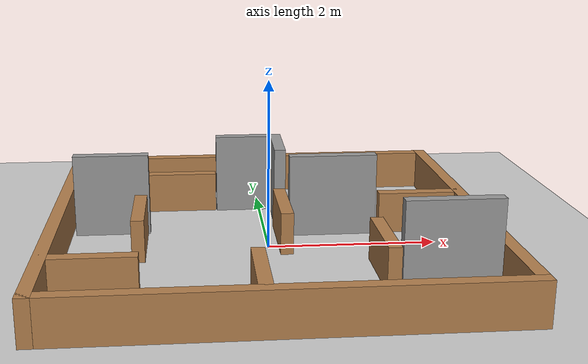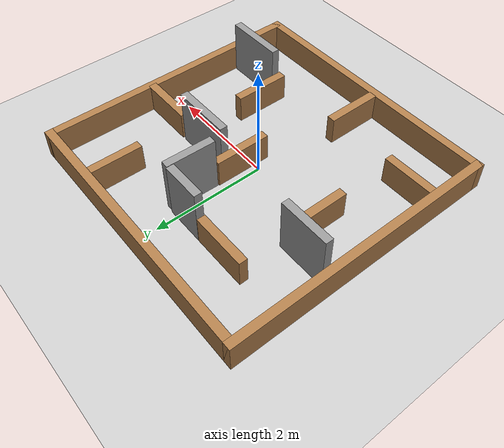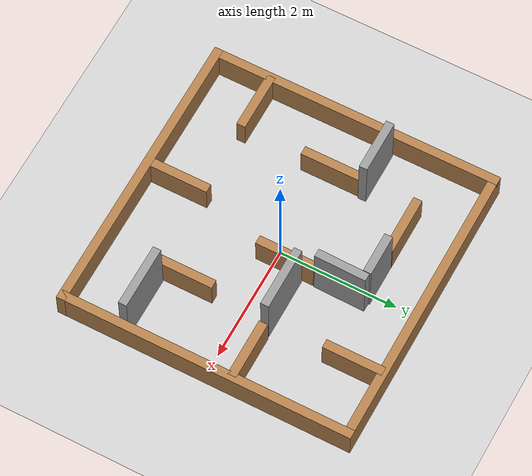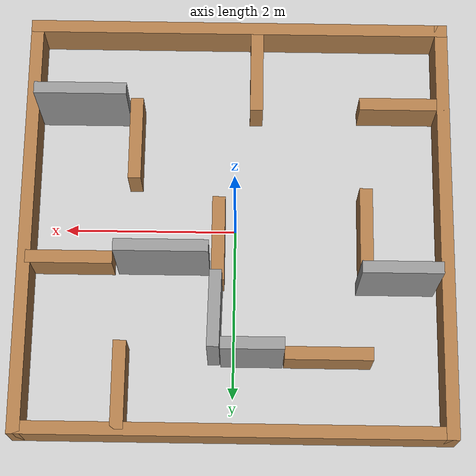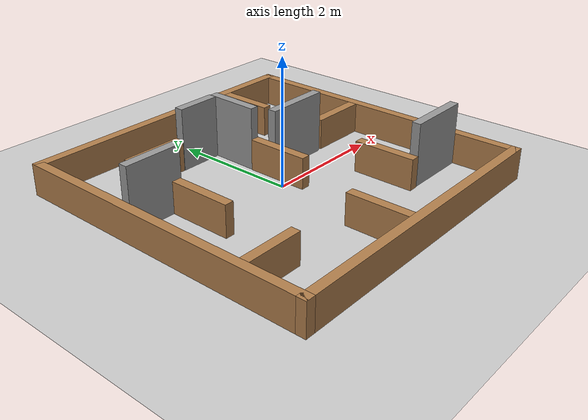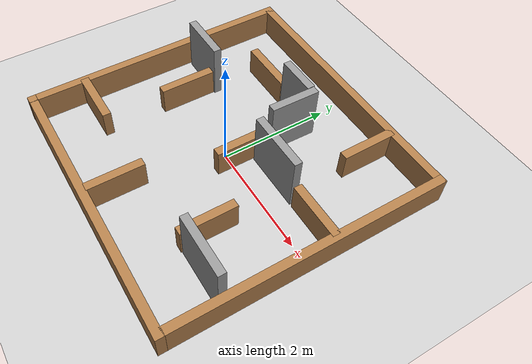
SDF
<sdf version="1.6">
 <world name="default">
  <light name="sun" type="directional">
   <pose>0 0 10 0 -0 0</pose>
   <diffuse>0.8 0.8 0.8 1</diffuse>
   <specular>0.2 0.2 0.2 1</specular>
   <attenuation>
    <range>1000</range>
    <constant>0.9</constant>
    <linear>0.01</linear>
    <quadratic>0.001</quadratic>
   </attenuation>
   <direction>-0.5 0.1 -0.9</direction>
  </light>
  <model name="ground_plane">
   <static>1</static>
   <link name="link">
    <collision name="collision">
     <geometry><plane><normal>0 0 1</normal><size>100 100</size></plane></geometry>
     <surface>
      <contact><collide_bitmask>65535</collide_bitmask></contact>
      <friction><ode><mu>100</mu><mu2>50</mu2></ode></friction>
     </surface>
    </collision>
    <visual name="visual">
     <cast_shadows>0</cast_shadows>
     <geometry><plane><normal>0 0 1</normal><size>100 100</size></plane></geometry>
     <material>
      <script><uri>file://media/materials/scripts/gazebo.material</uri><name>Gazebo/Grey</name></script>
     </material>
    </visual>
   </link>
  </model>
  <physics name="default_physics" default="0" type="ode">
   <real_time_update_rate>1000</real_time_update_rate>
   <max_step_size>0.001</max_step_size>
   <real_time_factor>1</real_time_factor>
   <ode>
    <solver>
     <type>quick</type>
     <iters>150</iters>
     <precon_iters>0</precon_iters>
     <sor>1.4</sor>
     <use_dynamic_moi_rescaling>1</use_dynamic_moi_rescaling>
    </solver>
    <constraints>
     <cfm>1e-05</cfm>
     <erp>0.2</erp>
     <contact_max_correcting_vel>2000</contact_max_correcting_vel>
     <contact_surface_layer>0.01</contact_surface_layer>
    </constraints>
   </ode>
  </physics>
  <model name="turtlebot3_plaza">
   <pose>-0.011961 -2e-06 0.006796 0 -0 0</pose>
   <link name="Wall_0">
    <collision name="Wall_0_Collision">
     <geometry><box><size>5 0.15 0.5</size></box></geometry>
     <pose>0 0 0.25 0 -0 0</pose>
    </collision>
    <visual name="Wall_0_Visual">
     <pose>0 0 0.25 0 -0 0</pose>
     <geometry><box><size>5 0.15 0.5</size></box></geometry>
     <material>
      <script><uri>file://media/materials/scripts/gazebo.material</uri><name>Gazebo/Wood</name></script>
      <ambient>1 1 1 1</ambient>
     </material>
    </visual>
    <pose>-2.425 0 0 0 -0 1.5708</pose>
   </link>
   <link name="Wall_11">
    <collision name="Wall_11_Collision">
     <geometry><box><size>1 0.15 0.5</size></box></geometry>
     <pose>0 0 0.25 0 -0 0</pose>
    </collision>
    <visual name="Wall_11_Visual">
     <pose>0 0 0.25 0 -0 0</pose>
     <geometry><box><size>1 0.15 0.5</size></box></geometry>
     <material>
      <script><uri>file://media/materials/scripts/gazebo.material</uri><name>Gazebo/Wood</name></script>
      <ambient>1 1 1 1</ambient>
     </material>
    </visual>
    <pose>-1.937 -1.467 0 0 -0 0</pose>
   </link>
   <link name="Wall_13">
    <collision name="Wall_13_Collision">
     <geometry><box><size>1 0.15 0.5</size></box></geometry>
     <pose>0 0 0.25 0 -0 0</pose>
    </collision>
    <visual name="Wall_13_Visual">
     <pose>0 0 0.25 0 -0 0</pose>
     <geometry><box><size>1 0.15 0.5</size></box></geometry>
     <material>
      <script><uri>file://media/materials/scripts/gazebo.material</uri><name>Gazebo/Wood</name></script>
      <ambient>1 1 1 1</ambient>
     </material>
    </visual>
    <pose>-0.22 -1.866 0 0 0 -1.5708</pose>
   </link>
   <link name="Wall_15">
    <collision name="Wall_15_Collision">
     <geometry><box><size>1 0.15 0.5</size></box></geometry>
     <pose>0 0 0.25 0 -0 0</pose>
    </collision>
    <visual name="Wall_15_Visual">
     <pose>0 0 0.25 0 -0 0</pose>
     <geometry><box><size>1 0.15 0.5</size></box></geometry>
     <material>
      <script><uri>file://media/materials/scripts/gazebo.material</uri><name>Gazebo/Wood</name></script>
      <ambient>1 1 1 1</ambient>
     </material>
    </visual>
    <pose>1.195 -1.002 0 0 -0 1.5708</pose>
   </link>
   <link name="Wall_17">
    <collision name="Wall_17_Collision">
     <geometry><box><size>1 0.15 0.5</size></box></geometry>
     <pose>0 0 0.25 0 -0 0</pose>
    </collision>
    <visual name="Wall_17_Visual">
     <pose>0 0 0.25 0 -0 0</pose>
     <geometry><box><size>1 0.15 0.5</size></box></geometry>
     <material>
      <script><uri>file://media/materials/scripts/gazebo.material</uri><name>Gazebo/Wood</name></script>
      <ambient>1 1 1 1</ambient>
     </material>
    </visual>
    <pose>1.288 1.93 0 0 0 -1.5708</pose>
   </link>
   <link name="Wall_19">
    <collision name="Wall_19_Collision">
     <geometry><box><size>1 0.15 0.5</size></box></geometry>
     <pose>0 0 0.25 0 -0 0</pose>
    </collision>
    <visual name="Wall_19_Visual">
     <pose>0 0 0.25 0 -0 0</pose>
     <geometry><box><size>1 0.15 0.5</size></box></geometry>
     <material>
      <script><uri>file://media/materials/scripts/gazebo.material</uri><name>Gazebo/Wood</name></script>
      <ambient>1 1 1 1</ambient>
     </material>
    </visual>
    <pose>1.91128 0.4632 0 0 -0 0</pose>
   </link>
   <link name="Wall_2">
    <collision name="Wall_2_Collision">
     <geometry><box><size>5 0.15 0.5</size></box></geometry>
     <pose>0 0 0.25 0 -0 0</pose>
    </collision>
    <visual name="Wall_2_Visual">
     <pose>0 0 0.25 0 -0 0</pose>
     <geometry><box><size>5 0.15 0.5</size></box></geometry>
     <material>
      <script><uri>file://media/materials/scripts/gazebo.material</uri><name>Gazebo/Wood</name></script>
      <ambient>1 1 1 1</ambient>
     </material>
    </visual>
    <pose>0 2.425 0 0 -0 0</pose>
   </link>
   <link name="Wall_21">
    <collision name="Wall_21_Collision">
     <geometry><box><size>1 0.15 0.5</size></box></geometry>
     <pose>0 0 0.25 0 -0 0</pose>
    </collision>
    <visual name="Wall_21_Visual">
     <pose>0 0 0.25 0 -0 0</pose>
     <geometry><box><size>1 0.15 0.5</size></box></geometry>
     <material>
      <script><uri>file://media/materials/scripts/gazebo.material</uri><name>Gazebo/Wood</name></script>
      <ambient>1 1 1 1</ambient>
     </material>
    </visual>
    <pose>0.204 0.215 0 0 0 -1.5708</pose>
   </link>
   <link name="Wall_3">
    <collision name="Wall_3_Collision">
     <geometry><box><size>5 0.15 0.5</size></box></geometry>
     <pose>0 0 0.25 0 -0 0</pose>
    </collision>
    <visual name="Wall_3_Visual">
     <pose>0 0 0.25 0 -0 0</pose>
     <geometry><box><size>5 0.15 0.5</size></box></geometry>
     <material>
      <script><uri>file://media/materials/scripts/gazebo.material</uri><name>Gazebo/Wood</name></script>
      <ambient>1 1 1 1</ambient>
     </material>
    </visual>
    <pose>2.425 0 0 0 0 -1.5708</pose>
   </link>
   <link name="Wall_4">
    <collision name="Wall_4_Collision">
     <geometry><box><size>5 0.15 0.5</size></box></geometry>
     <pose>0 0 0.25 0 -0 0</pose>
    </collision>
    <visual name="Wall_4_Visual">
     <pose>0 0 0.25 0 -0 0</pose>
     <geometry><box><size>5 0.15 0.5</size></box></geometry>
     <material>
      <script><uri>file://media/materials/scripts/gazebo.material</uri><name>Gazebo/Wood</name></script>
      <ambient>1 1 1 1</ambient>
     </material>
    </visual>
    <pose>0 -2.425 0 0 -0 3.14159</pose>
   </link>
   <link name="Wall_7">
    <collision name="Wall_7_Collision">
     <geometry><box><size>1 0.15 0.5</size></box></geometry>
     <pose>0 0 0.25 0 -0 0</pose>
    </collision>
    <visual name="Wall_7_Visual">
     <pose>0 0 0.25 0 -0 0</pose>
     <geometry><box><size>1 0.15 0.5</size></box></geometry>
     <material>
      <script><uri>file://media/materials/scripts/gazebo.material</uri><name>Gazebo/Wood</name></script>
      <ambient>1 1 1 1</ambient>
     </material>
    </visual>
    <pose>-1.064 1.548 0 0 -0 0</pose>
   </link>
   <link name="Wall_9">
    <collision name="Wall_9_Collision">
     <geometry><box><size>1 0.15 0.5</size></box></geometry>
     <pose>0 0 0.25 0 -0 0</pose>
    </collision>
    <visual name="Wall_9_Visual">
     <pose>0 0 0.25 0 -0 0</pose>
     <geometry><box><size>1 0.15 0.5</size></box></geometry>
     <material>
      <script><uri>file://media/materials/scripts/gazebo.material</uri><name>Gazebo/Wood</name></script>
      <ambient>1 1 1 1</ambient>
     </material>
    </visual>
    <pose>-1.502 0.092 0 0 0 -1.5708</pose>
   </link>
   <static>1</static>
  </model>
  <scene><ambient>0.4 0.4 0.4 1</ambient><background>0.7 0.7 0.7 1</background><shadows>1</shadows></scene>
  <gravity>0 0 -9.8</gravity>
  <magnetic_field>6e-06 2.3e-05 -4.2e-05</magnetic_field>
  <atmosphere type="adiabatic"/>
  <audio><device>default</device></audio>
  <spherical_coordinates>
   <surface_model>EARTH_WGS84</surface_model>
   <latitude_deg>0</latitude_deg>
   <longitude_deg>0</longitude_deg>
   <elevation>0</elevation>
   <heading_deg>0</heading_deg>
  </spherical_coordinates>
  <model name="unit_box_clone_clone_0_clone">
   <pose>0.213657 1.16322 0.5 0 0 -1.58979</pose>
   <link name="link">
    <inertial>
     <mass>1</mass>
     <inertia>
      <ixx>0.166667</ixx>
      <ixy>0</ixy>
      <ixz>0</ixz>
      <iyy>0.166667</iyy>
      <iyz>0</iyz>
      <izz>0.166667</izz>
     </inertia>
    </inertial>
    <collision name="collision"><geometry><box><size>0.868763 0.138395 1</size></box></geometry></collision>
    <visual name="visual">
     <geometry><box><size>0.868763 0.138395 1</size></box></geometry>
     <material>
      <script><name>Gazebo/Grey</name><uri>file://media/materials/scripts/gazebo.material</uri></script>
     </material>
    </visual>
   </link>
  </model>
  <model name="unit_box_clone">
   <pose>-0.209751 1.5505 0.499998 -1e-06 7e-06 0.001336</pose>
   <link name="link">
    <inertial>
     <mass>1</mass>
     <inertia>
      <ixx>0.166667</ixx>
      <ixy>0</ixy>
      <ixz>0</ixz>
      <iyy>0.166667</iyy>
      <iyz>0</iyz>
      <izz>0.166667</izz>
     </inertia>
    </inertial>
    <collision name="collision"><geometry><box><size>0.708257 0.138394 1</size></box></geometry></collision>
    <visual name="visual">
     <geometry><box><size>0.708257 0.138394 1</size></box></geometry>
     <material>
      <script><name>Gazebo/Grey</name><uri>file://media/materials/scripts/gazebo.material</uri></script>
     </material>
    </visual>
   </link>
  </model>
  <model name="unit_box_clone_clone_clone_0">
   <pose>-1.8678 0.673637 0.5 0 -0 3.14144</pose>
   <link name="link">
    <inertial>
     <mass>1</mass>
     <inertia>
      <ixx>0.166667</ixx>
      <ixy>0</ixy>
      <ixz>0</ixz>
      <iyy>0.166667</iyy>
      <iyz>0</iyz>
      <izz>0.166667</izz>
     </inertia>
    </inertial>
    <collision name="collision"><geometry><box><size>0.906137 0.138395 1</size></box></geometry></collision>
    <visual name="visual">
     <geometry><box><size>0.906137 0.138395 1</size></box></geometry>
     <material>
      <script><name>Gazebo/Grey</name><uri>file://media/materials/scripts/gazebo.material</uri></script>
     </material>
    </visual>
   </link>
  </model>
  <model name="unit_box_clone_clone_clone_clone">
   <pose>1.80536 -1.41494 0.5 1e-06 -0 -3.14113</pose>
   <link name="link">
    <inertial>
     <mass>1</mass>
     <inertia>
      <ixx>0.166667</ixx>
      <ixy>0</ixy>
      <ixz>0</ixz>
      <iyy>0.166667</iyy>
      <iyz>0</iyz>
      <izz>0.166667</izz>
     </inertia>
    </inertial>
    <collision name="collision"><geometry><box><size>1.06527 0.138395 1</size></box></geometry></collision>
    <visual name="visual">
     <geometry><box><size>1.06527 0.138395 1</size></box></geometry>
     <material>
      <script><name>Gazebo/Grey</name><uri>file://media/materials/scripts/gazebo.material</uri></script>
     </material>
    </visual>
   </link>
  </model>
  <model name="unit_box_clone_clone_clone_clone_clone">
   <pose>0.822213 0.457941 0.5 1e-06 -0 -3.14113</pose>
   <link name="link">
    <inertial>
     <mass>1</mass>
     <inertia>
      <ixx>0.166667</ixx>
      <ixy>0</ixy>
      <ixz>0</ixz>
      <iyy>0.166667</iyy>
      <iyz>0</iyz>
      <izz>0.166667</izz>
     </inertia>
    </inertial>
    <collision name="collision"><geometry><box><size>1.06527 0.138395 1</size></box></geometry></collision>
    <visual name="visual">
     <geometry><box><size>1.06527 0.138395 1</size></box></geometry>
     <material>
      <script><name>Gazebo/Grey</name><uri>file://media/materials/scripts/gazebo.material</uri></script>
     </material>
    </visual>
   </link>
  </model>
 </world>
</sdf>
